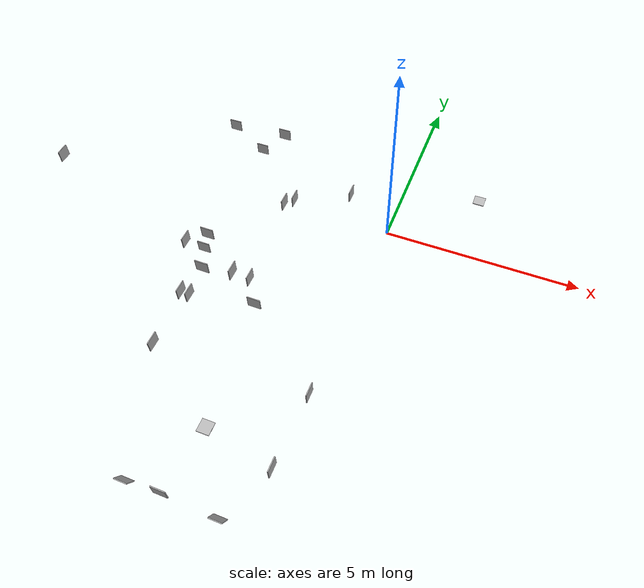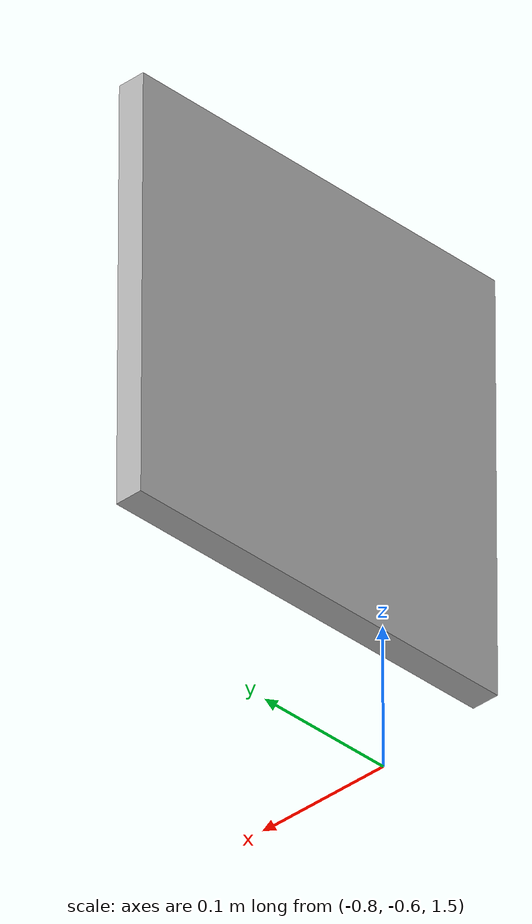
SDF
<?xml version='1.0'?>
<sdf version='1.6'>
  <model name='conjAprilTags'>
    <model name='tag_0'>
      <pose frame=''>-3.817 0.7 1.12 -1.57079 -1.57079 3.14159</pose>
      <static>1</static>
      <link name='link'>
        <collision name='collision'>
          <geometry>
            <box>
              <size>0.3 0.3 0.02</size>
            </box>
          </geometry>
          <max_contacts>10</max_contacts>
          <surface>
            <contact>
              <ode/>
            </contact>
            <bounce/>
            <friction>
              <torsional>
                <ode/>
              </torsional>
              <ode/>
            </friction>
          </surface>
        </collision>
        <visual name='visual'>
          <geometry>
            <box>
              <size>0.3 0.3 0.02</size>
            </box>
          </geometry>
          <material>
            <script>
              <uri>file://tags_material/scripts/tags.material</uri>
              <name>Tag36_11_00000</name>
            </script>
          </material>
        </visual>
        <self_collide>0</self_collide>
        <kinematic>0</kinematic>
      </link>
      <static>0</static>
    </model>
    <model name='tag_1'>
      <pose frame=''>-2.583 -8.289 0.74 0 -1.03 -1.5708</pose>
      <static>1</static>
      <link name='link'>
        <collision name='collision'>
          <geometry>
            <box>
              <size>0.3 0.3 0.02</size>
            </box>
          </geometry>
          <max_contacts>10</max_contacts>
          <surface>
            <contact>
              <ode/>
            </contact>
            <bounce/>
            <friction>
              <torsional>
                <ode/>
              </torsional>
              <ode/>
            </friction>
          </surface>
        </collision>
        <visual name='visual'>
          <geometry>
            <box>
              <size>0.3 0.3 0.02</size>
            </box>
          </geometry>
          <material>
            <script>
              <uri>file://tags_material/scripts/tags.material</uri>
              <name>Tag36_11_00001</name>
            </script>
          </material>
        </visual>
        <self_collide>0</self_collide>
        <kinematic>0</kinematic>
      </link>
      <static>0</static>
    </model>
    <model name='tag_2'>
      <pose frame=''>-3.304 -4.474 1.65 3.14159 -1.57079 3.14159</pose>
      <static>1</static>
      <link name='link'>
        <collision name='collision'>
          <geometry>
            <box>
              <size>0.3 0.3 0.02</size>
            </box>
          </geometry>
          <max_contacts>10</max_contacts>
          <surface>
            <contact>
              <ode/>
            </contact>
            <bounce/>
            <friction>
              <torsional>
                <ode/>
              </torsional>
              <ode/>
            </friction>
          </surface>
        </collision>
        <visual name='visual'>
          <geometry>
            <box>
              <size>0.3 0.3 0.02</size>
            </box>
          </geometry>
          <material>
            <script>
              <uri>file://tags_material/scripts/tags.material</uri>
              <name>Tag36_11_00002</name>
            </script>
          </material>
        </visual>
        <self_collide>0</self_collide>
        <kinematic>0</kinematic>
      </link>
      <static>0</static>
    </model>
    <model name='tag_3'>
      <pose frame=''>-2.103 -1.589 2.006 3.14159 -1.57079 3.14159</pose>
      <static>1</static>
      <link name='link'>
        <collision name='collision'>
          <geometry>
            <box>
              <size>0.3 0.3 0.02</size>
            </box>
          </geometry>
          <max_contacts>10</max_contacts>
          <surface>
            <contact>
              <ode/>
            </contact>
            <bounce/>
            <friction>
              <torsional>
                <ode/>
              </torsional>
              <ode/>
            </friction>
          </surface>
        </collision>
        <visual name='visual'>
          <geometry>
            <box>
              <size>0.3 0.3 0.02</size>
            </box>
          </geometry>
          <material>
            <script>
              <uri>file://tags_material/scripts/tags.material</uri>
              <name>Tag36_11_00003</name>
            </script>
          </material>
        </visual>
        <self_collide>0</self_collide>
        <kinematic>0</kinematic>
      </link>
      <static>0</static>
    </model>
    <model name='tag_4'>
      <pose frame=''>-4.549 0.727 1.7 -1.57079 -1.57079 3.14159</pose>
      <static>1</static>
      <link name='link'>
        <collision name='collision'>
          <geometry>
            <box>
              <size>0.3 0.3 0.02</size>
            </box>
          </geometry>
          <max_contacts>10</max_contacts>
          <surface>
            <contact>
              <ode/>
            </contact>
            <bounce/>
            <friction>
              <torsional>
                <ode/>
              </torsional>
              <ode/>
            </friction>
          </surface>
        </collision>
        <visual name='visual'>
          <geometry>
            <box>
              <size>0.3 0.3 0.02</size>
            </box>
          </geometry>
          <material>
            <script>
              <uri>file://tags_material/scripts/tags.material</uri>
              <name>Tag36_11_00004</name>
            </script>
          </material>
        </visual>
        <self_collide>0</self_collide>
        <kinematic>0</kinematic>
      </link>
      <static>0</static>
    </model>
    <model name='tag_5'>
      <pose frame=''>-0.839 -0.497 1.7 3.14159 -1.57079 3.14159</pose>
      <static>1</static>
      <link name='link'>
        <collision name='collision'>
          <geometry>
            <box>
              <size>0.3 0.3 0.02</size>
            </box>
          </geometry>
          <max_contacts>10</max_contacts>
          <surface>
            <contact>
              <ode/>
            </contact>
            <bounce/>
            <friction>
              <torsional>
                <ode/>
              </torsional>
              <ode/>
            </friction>
          </surface>
        </collision>
        <visual name='visual'>
          <geometry>
            <box>
              <size>0.3 0.3 0.02</size>
            </box>
          </geometry>
          <material>
            <script>
              <uri>file://tags_material/scripts/tags.material</uri>
              <name>Tag36_11_00005</name>
            </script>
          </material>
        </visual>
        <self_collide>0</self_collide>
        <kinematic>0</kinematic>
      </link>
      <static>0</static>
    </model>
    <model name='tag_6'>
      <pose frame=''>-3.535 -3.0625 1.4 1.57079 -1.57079 3.14159</pose>
      <static>1</static>
      <link name='link'>
        <collision name='collision'>
          <geometry>
            <box>
              <size>0.3 0.3 0.02</size>
            </box>
          </geometry>
          <max_contacts>10</max_contacts>
          <surface>
            <contact>
              <ode/>
            </contact>
            <bounce/>
            <friction>
              <torsional>
                <ode/>
              </torsional>
              <ode/>
            </friction>
          </surface>
        </collision>
        <visual name='visual'>
          <geometry>
            <box>
              <size>0.3 0.3 0.02</size>
            </box>
          </geometry>
          <material>
            <script>
              <uri>file://tags_material/scripts/tags.material</uri>
              <name>Tag36_11_00006</name>
            </script>
          </material>
        </visual>
        <self_collide>0</self_collide>
        <kinematic>0</kinematic>
      </link>
      <static>0</static>
    </model>
    <model name='tag_7'>
      <pose frame=''>-2.101 -1.051 1.587 3.14159 -1.57079 3.14159</pose>
      <static>1</static>
      <link name='link'>
        <collision name='collision'>
          <geometry>
            <box>
              <size>0.3 0.3 0.02</size>
            </box>
          </geometry>
          <max_contacts>10</max_contacts>
          <surface>
            <contact>
              <ode/>
            </contact>
            <bounce/>
            <friction>
              <torsional>
                <ode/>
              </torsional>
              <ode/>
            </friction>
          </surface>
        </collision>
        <visual name='visual'>
          <geometry>
            <box>
              <size>0.3 0.3 0.02</size>
            </box>
          </geometry>
          <material>
            <script>
              <uri>file://tags_material/scripts/tags.material</uri>
              <name>Tag36_11_00007</name>
            </script>
          </material>
        </visual>
        <self_collide>0</self_collide>
        <kinematic>0</kinematic>
      </link>
      <static>0</static>
    </model>
    <model name='tag_8'>
      <pose frame=''>0.294 -5.82 1.872 3.14159 -1.57079 3.14159</pose>
      <static>1</static>
      <link name='link'>
        <collision name='collision'>
          <geometry>
            <box>
              <size>0.3 0.3 0.02</size>
            </box>
          </geometry>
          <max_contacts>10</max_contacts>
          <surface>
            <contact>
              <ode/>
            </contact>
            <bounce/>
            <friction>
              <torsional>
                <ode/>
              </torsional>
              <ode/>
            </friction>
          </surface>
        </collision>
        <visual name='visual'>
          <geometry>
            <box>
              <size>0.3 0.3 0.02</size>
            </box>
          </geometry>
          <material>
            <script>
              <uri>file://tags_material/scripts/tags.material</uri>
              <name>Tag36_11_00008</name>
            </script>
          </material>
        </visual>
        <self_collide>0</self_collide>
        <kinematic>0</kinematic>
      </link>
      <static>0</static>
    </model>
    <model name='tag_9'>
      <pose frame=''>-1.435 -8.478 1.8 1.57079 -1.57079 3.14159</pose>
      <static>1</static>
      <link name='link'>
        <collision name='collision'>
          <geometry>
            <box>
              <size>0.3 0.3 0.02</size>
            </box>
          </geometry>
          <max_contacts>10</max_contacts>
          <surface>
            <contact>
              <ode/>
            </contact>
            <bounce/>
            <friction>
              <torsional>
                <ode/>
              </torsional>
              <ode/>
            </friction>
          </surface>
        </collision>
        <visual name='visual'>
          <geometry>
            <box>
              <size>0.3 0.3 0.02</size>
            </box>
          </geometry>
          <material>
            <script>
              <uri>file://tags_material/scripts/tags.material</uri>
              <name>Tag36_11_00009</name>
            </script>
          </material>
        </visual>
        <self_collide>0</self_collide>
        <kinematic>0</kinematic>
      </link>
      <static>0</static>
    </model>
    <model name='tag_10'>
      <pose frame=''>-1.614 -4.295 1.8 -1.57079 -1.57079 3.14159</pose>
      <static>1</static>
      <link name='link'>
        <collision name='collision'>
          <geometry>
            <box>
              <size>0.3 0.3 0.02</size>
            </box>
          </geometry>
          <max_contacts>10</max_contacts>
          <surface>
            <contact>
              <ode/>
            </contact>
            <bounce/>
            <friction>
              <torsional>
                <ode/>
              </torsional>
              <ode/>
            </friction>
          </surface>
        </collision>
        <visual name='visual'>
          <geometry>
            <box>
              <size>0.3 0.3 0.02</size>
            </box>
          </geometry>
          <material>
            <script>
              <uri>file://tags_material/scripts/tags.material</uri>
              <name>Tag36_11_00010</name>
            </script>
          </material>
        </visual>
        <self_collide>0</self_collide>
        <kinematic>0</kinematic>
      </link>
      <static>0</static>
    </model>
    <model name='tag_11'>
      <pose frame=''>-3.338 -3.071 1.99 1.57079 -1.57079 3.14159</pose>
      <static>1</static>
      <link name='link'>
        <collision name='collision'>
          <geometry>
            <box>
              <size>0.3 0.3 0.02</size>
            </box>
          </geometry>
          <max_contacts>10</max_contacts>
          <surface>
            <contact>
              <ode/>
            </contact>
            <bounce/>
            <friction>
              <torsional>
                <ode/>
              </torsional>
              <ode/>
            </friction>
          </surface>
        </collision>
        <visual name='visual'>
          <geometry>
            <box>
              <size>0.3 0.3 0.02</size>
            </box>
          </geometry>
          <material>
            <script>
              <uri>file://tags_material/scripts/tags.material</uri>
              <name>Tag36_11_00011</name>
            </script>
          </material>
        </visual>
        <self_collide>0</self_collide>
        <kinematic>0</kinematic>
      </link>
      <static>0</static>
    </model>
    <model name='tag_12'>
      <pose frame=''>-3.128 0.72 1.83 -1.57079 -1.57079 3.14159</pose>
      <static>1</static>
      <link name='link'>
        <collision name='collision'>
          <geometry>
            <box>
              <size>0.3 0.3 0.02</size>
            </box>
          </geometry>
          <max_contacts>10</max_contacts>
          <surface>
            <contact>
              <ode/>
            </contact>
            <bounce/>
            <friction>
              <torsional>
                <ode/>
              </torsional>
              <ode/>
            </friction>
          </surface>
        </collision>
        <visual name='visual'>
          <geometry>
            <box>
              <size>0.3 0.3 0.02</size>
            </box>
          </geometry>
          <material>
            <script>
              <uri>file://tags_material/scripts/tags.material</uri>
              <name>Tag36_11_00012</name>
            </script>
          </material>
        </visual>
        <self_collide>0</self_collide>
        <kinematic>0</kinematic>
      </link>
      <static>0</static>
    </model>
    <model name='tag_13'>
      <pose frame=''>-2.11 -3.543 1.51 3.14159 -1.57079 3.14159</pose>
      <static>1</static>
      <link name='link'>
        <collision name='collision'>
          <geometry>
            <box>
              <size>0.02 0.3 0.3</size>
            </box>
          </geometry>
          <max_contacts>10</max_contacts>
          <surface>
            <contact>
              <ode/>
            </contact>
            <bounce/>
            <friction>
              <torsional>
                <ode/>
              </torsional>
              <ode/>
            </friction>
          </surface>
        </collision>
        <visual name='visual'>
          <geometry>
            <box>
              <size>0.3 0.3 0.02</size>
            </box>
          </geometry>
          <material>
            <script>
              <uri>file://tags_material/scripts/tags.material</uri>
              <name>Tag36_11_00013</name>
            </script>
          </material>
        </visual>
        <self_collide>0</self_collide>
        <kinematic>0</kinematic>
      </link>
      <static>0</static>
    </model>
    <model name='tag_14'>
      <pose frame=''>-2.884 -4.091 2.215 1.57079 -1.57079 3.14159</pose>
      <static>1</static>
      <link name='link'>
        <collision name='collision'>
          <geometry>
            <box>
              <size>0.3 0.02 0.3</size>
            </box>
          </geometry>
          <max_contacts>10</max_contacts>
          <surface>
            <contact>
              <ode/>
            </contact>
            <bounce/>
            <friction>
              <torsional>
                <ode/>
              </torsional>
              <ode/>
            </friction>
          </surface>
        </collision>
        <visual name='visual'>
          <geometry>
            <box>
              <size>0.3 0.3 0.02</size>
            </box>
          </geometry>
          <material>
            <script>
              <uri>file://tags_material/scripts/tags.material</uri>
              <name>Tag36_11_00014</name>
            </script>
          </material>
        </visual>
        <self_collide>0</self_collide>
        <kinematic>0</kinematic>
      </link>
      <static>0</static>
    </model>
    <model name='tag_15'>
      <pose frame=''>-7.694 -2.223 2.208 7e-06 -1.57079 -3.14159</pose>
      <static>1</static>
      <link name='link'>
        <collision name='collision'>
          <geometry>
            <box>
              <size>0.02 0.3 0.3</size>
            </box>
          </geometry>
          <max_contacts>10</max_contacts>
          <surface>
            <contact>
              <ode/>
            </contact>
            <bounce/>
            <friction>
              <torsional>
                <ode/>
              </torsional>
              <ode/>
            </friction>
          </surface>
        </collision>
        <visual name='visual'>
          <geometry>
            <box>
              <size>0.3 0.3 0.02</size>
            </box>
          </geometry>
          <material>
            <script>
              <uri>file://tags_material/scripts/tags.material</uri>
              <name>Tag36_11_00015</name>
            </script>
          </material>
        </visual>
        <self_collide>0</self_collide>
        <kinematic>0</kinematic>
      </link>
      <static>0</static>
    </model>
    <model name='tag_16'>
      <pose frame=''>-3.094 -4.474 1.65 7e-06 -1.57079 -3.14159</pose>
      <static>1</static>
      <link name='link'>
        <collision name='collision'>
          <geometry>
            <box>
              <size>0.3 0.3 0.02</size>
            </box>
          </geometry>
          <max_contacts>10</max_contacts>
          <surface>
            <contact>
              <ode/>
            </contact>
            <bounce/>
            <friction>
              <torsional>
                <ode/>
              </torsional>
              <ode/>
            </friction>
          </surface>
        </collision>
        <visual name='visual'>
          <geometry>
            <box>
              <size>0.3 0.3 0.02</size>
            </box>
          </geometry>
          <material>
            <script>
              <uri>file://tags_material/scripts/tags.material</uri>
              <name>Tag36_11_00016</name>
            </script>
          </material>
        </visual>
        <self_collide>0</self_collide>
        <kinematic>0</kinematic>
      </link>
      <static>0</static>
    </model>
    <model name='tag_17'>
      <pose frame=''>-3.902 -3.178 1.65 3.14159 -1.57079 3.14159</pose>
      <static>1</static>
      <link name='link'>
        <collision name='collision'>
          <geometry>
            <box>
              <size>0.3 0.3 0.02</size>
            </box>
          </geometry>
          <max_contacts>10</max_contacts>
          <surface>
            <contact>
              <ode/>
            </contact>
            <bounce/>
            <friction>
              <torsional>
                <ode/>
              </torsional>
              <ode/>
            </friction>
          </surface>
        </collision>
        <visual name='visual'>
          <geometry>
            <box>
              <size>0.3 0.3 0.02</size>
            </box>
          </geometry>
          <material>
            <script>
              <uri>file://tags_material/scripts/tags.material</uri>
              <name>Tag36_11_00017</name>
            </script>
          </material>
        </visual>
        <self_collide>0</self_collide>
        <kinematic>0</kinematic>
      </link>
      <static>0</static>
    </model>
    <model name='tag_18'>
      <pose frame=''>-1.712 -6.69 0.496 0 -0 0</pose>
      <static>1</static>
      <link name='link'>
        <collision name='collision'>
          <geometry>
            <box>
              <size>0.3 0.3 0.02</size>
            </box>
          </geometry>
          <max_contacts>10</max_contacts>
          <surface>
            <contact>
              <ode/>
            </contact>
            <bounce/>
            <friction>
              <torsional>
                <ode/>
              </torsional>
              <ode/>
            </friction>
          </surface>
        </collision>
        <visual name='visual'>
          <geometry>
            <box>
              <size>0.3 0.3 0.02</size>
            </box>
          </geometry>
          <material>
            <script>
              <uri>file://tags_material/scripts/tags.material</uri>
              <name>Tag36_11_00018</name>
            </script>
          </material>
        </visual>
        <self_collide>0</self_collide>
        <kinematic>0</kinematic>
      </link>
      <static>0</static>
    </model>
    <model name='tag_19'>
      <pose frame=''>-3.045 -5.939 1.935 3.14159 -1.57079 3.14159</pose>
      <static>1</static>
      <link name='link'>
        <collision name='collision'>
          <geometry>
            <box>
              <size>0.3 0.3 0.02</size>
            </box>
          </geometry>
          <max_contacts>10</max_contacts>
          <surface>
            <contact>
              <ode/>
            </contact>
            <bounce/>
            <friction>
              <torsional>
                <ode/>
              </torsional>
              <ode/>
            </friction>
          </surface>
        </collision>
        <visual name='visual'>
          <geometry>
            <box>
              <size>0.3 0.3 0.02</size>
            </box>
          </geometry>
          <material>
            <script>
              <uri>file://tags_material/scripts/tags.material</uri>
              <name>Tag36_11_00019</name>
            </script>
          </material>
        </visual>
        <self_collide>0</self_collide>
        <kinematic>0</kinematic>
      </link>
      <static>0</static>
    </model>
    <model name='tag_20'>
      <pose frame=''>0.293 -7.471 2.131 3.14159 -1.57079 3.14159</pose>
      <static>1</static>
      <link name='link'>
        <collision name='collision'>
          <geometry>
            <box>
              <size>0.3 0.3 0.02</size>
            </box>
          </geometry>
          <max_contacts>10</max_contacts>
          <surface>
            <contact>
              <ode/>
            </contact>
            <bounce/>
            <friction>
              <torsional>
                <ode/>
              </torsional>
              <ode/>
            </friction>
          </surface>
        </collision>
        <visual name='visual'>
          <geometry>
            <box>
              <size>0.3 0.3 0.02</size>
            </box>
          </geometry>
          <material>
            <script>
              <uri>file://tags_material/scripts/tags.material</uri>
              <name>Tag36_11_00020</name>
            </script>
          </material>
        </visual>
        <self_collide>0</self_collide>
        <kinematic>0</kinematic>
      </link>
      <static>0</static>
    </model>
    <model name='tag_21'>
      <pose frame=''>-2.201 -4.003 2.293 3.14159 -1.57079 3.14159</pose>
      <static>1</static>
      <link name='link'>
        <collision name='collision'>
          <geometry>
            <box>
              <size>0.3 0.3 0.02</size>
            </box>
          </geometry>
          <max_contacts>10</max_contacts>
          <surface>
            <contact>
              <ode/>
            </contact>
            <bounce/>
            <friction>
              <torsional>
                <ode/>
              </torsional>
              <ode/>
            </friction>
          </surface>
        </collision>
        <visual name='visual'>
          <geometry>
            <box>
              <size>0.3 0.3 0.02</size>
            </box>
          </geometry>
          <material>
            <script>
              <uri>file://tags_material/scripts/tags.material</uri>
              <name>Tag36_11_00021</name>
            </script>
          </material>
        </visual>
        <self_collide>0</self_collide>
        <kinematic>0</kinematic>
      </link>
      <static>0</static>
    </model>
    <model name='tag_22'>
      <pose frame=''>-0.559 -8.289 0.74 0 -1.03 -1.5708</pose>
      <static>1</static>
      <link name='link'>
        <collision name='collision'>
          <geometry>
            <box>
              <size>0.3 0.3 0.02</size>
            </box>
          </geometry>
          <max_contacts>10</max_contacts>
          <surface>
            <contact>
              <ode/>
            </contact>
            <bounce/>
            <friction>
              <torsional>
                <ode/>
              </torsional>
              <ode/>
            </friction>
          </surface>
        </collision>
        <visual name='visual'>
          <geometry>
            <box>
              <size>0.3 0.3 0.02</size>
            </box>
          </geometry>
          <material>
            <script>
              <uri>file://tags_material/scripts/tags.material</uri>
              <name>Tag36_11_00022</name>
            </script>
          </material>
        </visual>
        <self_collide>0</self_collide>
        <kinematic>0</kinematic>
      </link>
      <static>0</static>
    </model>
    <model name='tag_23'>
      <pose frame=''>2 2 0 0 -0 0</pose>
      <static>1</static>
      <link name='link'>
        <collision name='collision'>
          <geometry>
            <box>
              <size>0.3 0.3 0.02</size>
            </box>
          </geometry>
          <max_contacts>10</max_contacts>
          <surface>
            <contact>
              <ode/>
            </contact>
            <bounce/>
            <friction>
              <torsional>
                <ode/>
              </torsional>
              <ode/>
            </friction>
          </surface>
        </collision>
        <visual name='visual'>
          <geometry>
            <box>
              <size>0.3 0.3 0.02</size>
            </box>
          </geometry>
          <material>
            <script>
              <uri>file://tags_material/scripts/tags.material</uri>
              <name>Tag36_11_00023</name>
            </script>
          </material>
        </visual>
        <self_collide>0</self_collide>
        <kinematic>0</kinematic>
      </link>
      <static>0</static>
    </model>
  </model>
</sdf>
